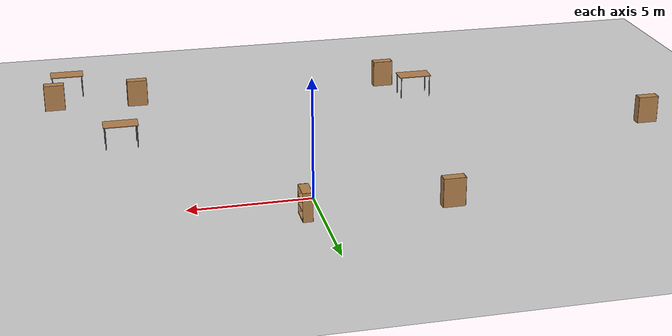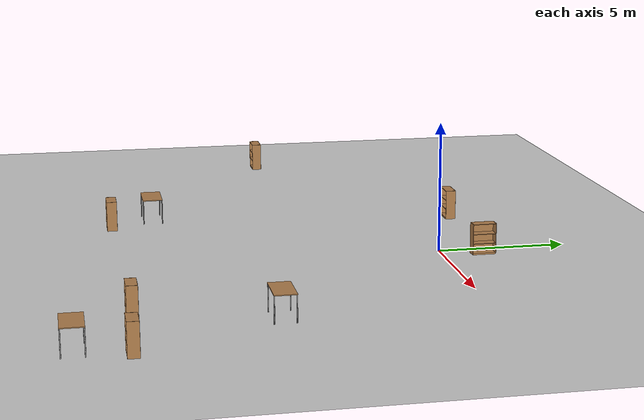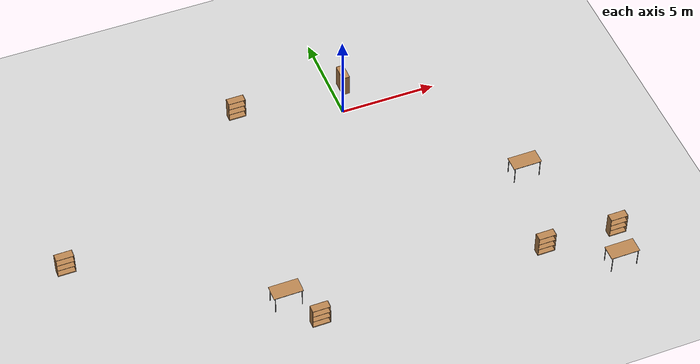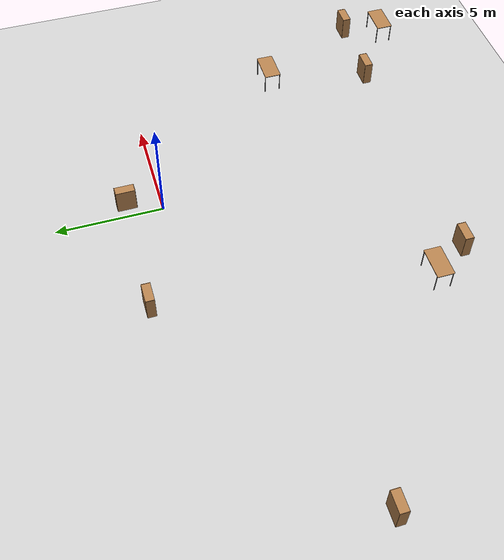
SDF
<sdf version="1.7">
 <world name="default">
  <model name="ground_plane">
   <static>1</static>
   <link name="link">
    <collision name="collision">
     <geometry><plane><normal>0 0 1</normal><size>1000 1000</size></plane></geometry>
     <surface>
      <contact><collide_bitmask>65535</collide_bitmask></contact>
      <friction><ode><mu>100</mu><mu2>50</mu2></ode></friction>
     </surface>
    </collision>
    <visual name="visual">
     <cast_shadows>0</cast_shadows>
     <geometry><plane><normal>0 0 1</normal><size>100 100</size></plane></geometry>
     <material>
      <script><uri>file://media/materials/scripts/gazebo.material</uri><name>Gazebo/Grey</name></script>
     </material>
    </visual>
   </link>
  </model>
  <model name="bookshelf">
   <static>1</static>
   <link name="link">
    <inertial><mass>1</mass></inertial>
    <visual name="visual1">
     <pose>0 0.005 0.6 0 -0 0</pose>
     <geometry><box><size>0.9 0.01 1.2</size></box></geometry>
     <material>
      <script><uri>file://media/materials/scripts/gazebo.material</uri><name>Gazebo/Wood</name></script>
     </material>
    </visual>
    <visual name="visual2">
     <pose>0.45 -0.195 0.6 0 -0 0</pose>
     <geometry><box><size>0.02 0.4 1.2</size></box></geometry>
     <material>
      <script><uri>file://media/materials/scripts/gazebo.material</uri><name>Gazebo/Wood</name></script>
     </material>
    </visual>
    <visual name="visual3">
     <pose>-0.45 -0.195 0.6 0 -0 0</pose>
     <geometry><box><size>0.02 0.4 1.2</size></box></geometry>
     <material>
      <script><uri>file://media/materials/scripts/gazebo.material</uri><name>Gazebo/Wood</name></script>
     </material>
    </visual>
    <visual name="visual4">
     <pose>0 -0.195 0.03 0 -0 0</pose>
     <geometry><box><size>0.88 0.4 0.06</size></box></geometry>
     <material>
      <script><uri>file://media/materials/scripts/gazebo.material</uri><name>Gazebo/Wood</name></script>
     </material>
    </visual>
    <visual name="visual5">
     <pose>0 -0.195 1.19 0 -0 0</pose>
     <geometry><box><size>0.88 0.4 0.02</size></box></geometry>
     <material>
      <script><uri>file://media/materials/scripts/gazebo.material</uri><name>Gazebo/Wood</name></script>
     </material>
    </visual>
    <visual name="visual6">
     <pose>0 -0.195 0.43 0 -0 0</pose>
     <geometry><box><size>0.88 0.4 0.02</size></box></geometry>
     <material>
      <script><uri>file://media/materials/scripts/gazebo.material</uri><name>Gazebo/Wood</name></script>
     </material>
    </visual>
    <visual name="visual7">
     <pose>0 -0.195 0.8 0 -0 0</pose>
     <geometry><box><size>0.88 0.4 0.02</size></box></geometry>
     <material>
      <script><uri>file://media/materials/scripts/gazebo.material</uri><name>Gazebo/Wood</name></script>
     </material>
    </visual>
   </link>
   <pose>0.43 1.58 0 0 -0 1.57611</pose>
  </model>
  <model name="bookshelf_0">
   <static>1</static>
   <link name="link">
    <inertial><mass>1</mass></inertial>
    <collision name="back">
     <pose>0 0.005 0.6 0 -0 0</pose>
     <geometry><box><size>0.9 0.01 1.2</size></box></geometry>
    </collision>
    <visual name="visual1">
     <pose>0 0.005 0.6 0 -0 0</pose>
     <geometry><box><size>0.9 0.01 1.2</size></box></geometry>
     <material>
      <script><uri>file://media/materials/scripts/gazebo.material</uri><name>Gazebo/Wood</name></script>
     </material>
    </visual>
    <collision name="left_side">
     <pose>0.45 -0.195 0.6 0 -0 0</pose>
     <geometry><box><size>0.02 0.4 1.2</size></box></geometry>
    </collision>
    <visual name="visual2">
     <pose>0.45 -0.195 0.6 0 -0 0</pose>
     <geometry><box><size>0.02 0.4 1.2</size></box></geometry>
     <material>
      <script><uri>file://media/materials/scripts/gazebo.material</uri><name>Gazebo/Wood</name></script>
     </material>
    </visual>
    <collision name="right_side">
     <pose>-0.45 -0.195 0.6 0 -0 0</pose>
     <geometry><box><size>0.02 0.4 1.2</size></box></geometry>
    </collision>
    <visual name="visual3">
     <pose>-0.45 -0.195 0.6 0 -0 0</pose>
     <geometry><box><size>0.02 0.4 1.2</size></box></geometry>
     <material>
      <script><uri>file://media/materials/scripts/gazebo.material</uri><name>Gazebo/Wood</name></script>
     </material>
    </visual>
    <collision name="bottom">
     <pose>0 -0.195 0.03 0 -0 0</pose>
     <geometry><box><size>0.88 0.4 0.06</size></box></geometry>
    </collision>
    <visual name="visual4">
     <pose>0 -0.195 0.03 0 -0 0</pose>
     <geometry><box><size>0.88 0.4 0.06</size></box></geometry>
     <material>
      <script><uri>file://media/materials/scripts/gazebo.material</uri><name>Gazebo/Wood</name></script>
     </material>
    </visual>
    <collision name="top">
     <pose>0 -0.195 1.19 0 -0 0</pose>
     <geometry><box><size>0.88 0.4 0.02</size></box></geometry>
    </collision>
    <visual name="visual5">
     <pose>0 -0.195 1.19 0 -0 0</pose>
     <geometry><box><size>0.88 0.4 0.02</size></box></geometry>
     <material>
      <script><uri>file://media/materials/scripts/gazebo.material</uri><name>Gazebo/Wood</name></script>
     </material>
    </visual>
    <collision name="low_shelf">
     <pose>0 -0.195 0.43 0 -0 0</pose>
     <geometry><box><size>0.88 0.4 0.02</size></box></geometry>
    </collision>
    <visual name="visual6">
     <pose>0 -0.195 0.43 0 -0 0</pose>
     <geometry><box><size>0.88 0.4 0.02</size></box></geometry>
     <material>
      <script><uri>file://media/materials/scripts/gazebo.material</uri><name>Gazebo/Wood</name></script>
     </material>
    </visual>
    <collision name="high_shelf">
     <pose>0 -0.195 0.8 0 -0 0</pose>
     <geometry><box><size>0.88 0.4 0.02</size></box></geometry>
    </collision>
    <visual name="visual7">
     <pose>0 -0.195 0.8 0 -0 0</pose>
     <geometry><box><size>0.88 0.4 0.02</size></box></geometry>
     <material>
      <script><uri>file://media/materials/scripts/gazebo.material</uri><name>Gazebo/Wood</name></script>
     </material>
    </visual>
   </link>
   <pose>-5.16677 1.95844 0 0 -0 0</pose>
  </model>
  <model name="table_0">
   <static>1</static>
   <link name="link">
    <collision name="surface">
     <pose>0 0 1 0 -0 0</pose>
     <geometry><box><size>1.5 0.8 0.03</size></box></geometry>
     <surface><friction><ode><mu>0.6</mu><mu2>0.6</mu2></ode></friction></surface>
    </collision>
    <visual name="visual1">
     <pose>0 0 1 0 -0 0</pose>
     <geometry><box><size>1.5 0.8 0.03</size></box></geometry>
     <material>
      <script><uri>file://media/materials/scripts/gazebo.material</uri><name>Gazebo/Wood</name></script>
     </material>
    </visual>
    <collision name="front_left_leg">
     <pose>0.68 0.38 0.5 0 -0 0</pose>
     <geometry><cylinder><radius>0.02</radius><length>1</length></cylinder></geometry>
    </collision>
    <visual name="front_left_leg">
     <pose>0.68 0.38 0.5 0 -0 0</pose>
     <geometry><cylinder><radius>0.02</radius><length>1</length></cylinder></geometry>
     <material>
      <script><uri>file://media/materials/scripts/gazebo.material</uri><name>Gazebo/Grey</name></script>
     </material>
    </visual>
    <collision name="front_right_leg">
     <pose>0.68 -0.38 0.5 0 -0 0</pose>
     <geometry><cylinder><radius>0.02</radius><length>1</length></cylinder></geometry>
    </collision>
    <visual name="front_right_leg">
     <pose>0.68 -0.38 0.5 0 -0 0</pose>
     <geometry><cylinder><radius>0.02</radius><length>1</length></cylinder></geometry>
     <material>
      <script><uri>file://media/materials/scripts/gazebo.material</uri><name>Gazebo/Grey</name></script>
     </material>
    </visual>
    <collision name="back_right_leg">
     <pose>-0.68 -0.38 0.5 0 -0 0</pose>
     <geometry><cylinder><radius>0.02</radius><length>1</length></cylinder></geometry>
    </collision>
    <visual name="back_right_leg">
     <pose>-0.68 -0.38 0.5 0 -0 0</pose>
     <geometry><cylinder><radius>0.02</radius><length>1</length></cylinder></geometry>
     <material>
      <script><uri>file://media/materials/scripts/gazebo.material</uri><name>Gazebo/Grey</name></script>
     </material>
    </visual>
    <collision name="back_left_leg">
     <pose>-0.68 0.38 0.5 0 -0 0</pose>
     <geometry><cylinder><radius>0.02</radius><length>1</length></cylinder></geometry>
    </collision>
    <visual name="back_left_leg">
     <pose>-0.68 0.38 0.5 0 -0 0</pose>
     <geometry><cylinder><radius>0.02</radius><length>1</length></cylinder></geometry>
     <material>
      <script><uri>file://media/materials/scripts/gazebo.material</uri><name>Gazebo/Grey</name></script>
     </material>
    </visual>
   </link>
   <pose>6.91808 -7.19797 0 0 -0 0</pose>
  </model>
  <model name="bookshelf_3">
   <static>1</static>
   <link name="link">
    <inertial><mass>1</mass></inertial>
    <collision name="back">
     <pose>0 0.005 0.6 0 -0 0</pose>
     <geometry><box><size>0.9 0.01 1.2</size></box></geometry>
    </collision>
    <visual name="visual1">
     <pose>0 0.005 0.6 0 -0 0</pose>
     <geometry><box><size>0.9 0.01 1.2</size></box></geometry>
     <material>
      <script><uri>file://media/materials/scripts/gazebo.material</uri><name>Gazebo/Wood</name></script>
     </material>
    </visual>
    <collision name="left_side">
     <pose>0.45 -0.195 0.6 0 -0 0</pose>
     <geometry><box><size>0.02 0.4 1.2</size></box></geometry>
    </collision>
    <visual name="visual2">
     <pose>0.45 -0.195 0.6 0 -0 0</pose>
     <geometry><box><size>0.02 0.4 1.2</size></box></geometry>
     <material>
      <script><uri>file://media/materials/scripts/gazebo.material</uri><name>Gazebo/Wood</name></script>
     </material>
    </visual>
    <collision name="right_side">
     <pose>-0.45 -0.195 0.6 0 -0 0</pose>
     <geometry><box><size>0.02 0.4 1.2</size></box></geometry>
    </collision>
    <visual name="visual3">
     <pose>-0.45 -0.195 0.6 0 -0 0</pose>
     <geometry><box><size>0.02 0.4 1.2</size></box></geometry>
     <material>
      <script><uri>file://media/materials/scripts/gazebo.material</uri><name>Gazebo/Wood</name></script>
     </material>
    </visual>
    <collision name="bottom">
     <pose>0 -0.195 0.03 0 -0 0</pose>
     <geometry><box><size>0.88 0.4 0.06</size></box></geometry>
    </collision>
    <visual name="visual4">
     <pose>0 -0.195 0.03 0 -0 0</pose>
     <geometry><box><size>0.88 0.4 0.06</size></box></geometry>
     <material>
      <script><uri>file://media/materials/scripts/gazebo.material</uri><name>Gazebo/Wood</name></script>
     </material>
    </visual>
    <collision name="top">
     <pose>0 -0.195 1.19 0 -0 0</pose>
     <geometry><box><size>0.88 0.4 0.02</size></box></geometry>
    </collision>
    <visual name="visual5">
     <pose>0 -0.195 1.19 0 -0 0</pose>
     <geometry><box><size>0.88 0.4 0.02</size></box></geometry>
     <material>
      <script><uri>file://media/materials/scripts/gazebo.material</uri><name>Gazebo/Wood</name></script>
     </material>
    </visual>
    <collision name="low_shelf">
     <pose>0 -0.195 0.43 0 -0 0</pose>
     <geometry><box><size>0.88 0.4 0.02</size></box></geometry>
    </collision>
    <visual name="visual6">
     <pose>0 -0.195 0.43 0 -0 0</pose>
     <geometry><box><size>0.88 0.4 0.02</size></box></geometry>
     <material>
      <script><uri>file://media/materials/scripts/gazebo.material</uri><name>Gazebo/Wood</name></script>
     </material>
    </visual>
    <collision name="high_shelf">
     <pose>0 -0.195 0.8 0 -0 0</pose>
     <geometry><box><size>0.88 0.4 0.02</size></box></geometry>
    </collision>
    <visual name="visual7">
     <pose>0 -0.195 0.8 0 -0 0</pose>
     <geometry><box><size>0.88 0.4 0.02</size></box></geometry>
     <material>
      <script><uri>file://media/materials/scripts/gazebo.material</uri><name>Gazebo/Wood</name></script>
     </material>
    </visual>
   </link>
   <pose>5.82048 -11.903 0 0 -0 0</pose>
  </model>
  <model name="bookshelf_16">
   <static>1</static>
   <link name="link">
    <inertial><mass>1</mass></inertial>
    <collision name="back">
     <pose>0 0.005 0.6 0 -0 0</pose>
     <geometry><box><size>0.9 0.01 1.2</size></box></geometry>
    </collision>
    <visual name="visual1">
     <pose>0 0.005 0.6 0 -0 0</pose>
     <geometry><box><size>0.9 0.01 1.2</size></box></geometry>
     <material>
      <script><uri>file://media/materials/scripts/gazebo.material</uri><name>Gazebo/Wood</name></script>
     </material>
    </visual>
    <collision name="left_side">
     <pose>0.45 -0.195 0.6 0 -0 0</pose>
     <geometry><box><size>0.02 0.4 1.2</size></box></geometry>
    </collision>
    <visual name="visual2">
     <pose>0.45 -0.195 0.6 0 -0 0</pose>
     <geometry><box><size>0.02 0.4 1.2</size></box></geometry>
     <material>
      <script><uri>file://media/materials/scripts/gazebo.material</uri><name>Gazebo/Wood</name></script>
     </material>
    </visual>
    <collision name="right_side">
     <pose>-0.45 -0.195 0.6 0 -0 0</pose>
     <geometry><box><size>0.02 0.4 1.2</size></box></geometry>
    </collision>
    <visual name="visual3">
     <pose>-0.45 -0.195 0.6 0 -0 0</pose>
     <geometry><box><size>0.02 0.4 1.2</size></box></geometry>
     <material>
      <script><uri>file://media/materials/scripts/gazebo.material</uri><name>Gazebo/Wood</name></script>
     </material>
    </visual>
    <collision name="bottom">
     <pose>0 -0.195 0.03 0 -0 0</pose>
     <geometry><box><size>0.88 0.4 0.06</size></box></geometry>
    </collision>
    <visual name="visual4">
     <pose>0 -0.195 0.03 0 -0 0</pose>
     <geometry><box><size>0.88 0.4 0.06</size></box></geometry>
     <material>
      <script><uri>file://media/materials/scripts/gazebo.material</uri><name>Gazebo/Wood</name></script>
     </material>
    </visual>
    <collision name="top">
     <pose>0 -0.195 1.19 0 -0 0</pose>
     <geometry><box><size>0.88 0.4 0.02</size></box></geometry>
    </collision>
    <visual name="visual5">
     <pose>0 -0.195 1.19 0 -0 0</pose>
     <geometry><box><size>0.88 0.4 0.02</size></box></geometry>
     <material>
      <script><uri>file://media/materials/scripts/gazebo.material</uri><name>Gazebo/Wood</name></script>
     </material>
    </visual>
    <collision name="low_shelf">
     <pose>0 -0.195 0.43 0 -0 0</pose>
     <geometry><box><size>0.88 0.4 0.02</size></box></geometry>
    </collision>
    <visual name="visual6">
     <pose>0 -0.195 0.43 0 -0 0</pose>
     <geometry><box><size>0.88 0.4 0.02</size></box></geometry>
     <material>
      <script><uri>file://media/materials/scripts/gazebo.material</uri><name>Gazebo/Wood</name></script>
     </material>
    </visual>
    <collision name="high_shelf">
     <pose>0 -0.195 0.8 0 -0 0</pose>
     <geometry><box><size>0.88 0.4 0.02</size></box></geometry>
    </collision>
    <visual name="visual7">
     <pose>0 -0.195 0.8 0 -0 0</pose>
     <geometry><box><size>0.88 0.4 0.02</size></box></geometry>
     <material>
      <script><uri>file://media/materials/scripts/gazebo.material</uri><name>Gazebo/Wood</name></script>
     </material>
    </visual>
   </link>
   <pose>-16.2598 -4.62783 0 0 -0 0</pose>
  </model>
  <model name="table_6">
   <static>1</static>
   <link name="link">
    <collision name="surface">
     <pose>0 0 1 0 -0 0</pose>
     <geometry><box><size>1.5 0.8 0.03</size></box></geometry>
     <surface><friction><ode><mu>0.6</mu><mu2>0.6</mu2></ode></friction></surface>
    </collision>
    <visual name="visual1">
     <pose>0 0 1 0 -0 0</pose>
     <geometry><box><size>1.5 0.8 0.03</size></box></geometry>
     <material>
      <script><uri>file://media/materials/scripts/gazebo.material</uri><name>Gazebo/Wood</name></script>
     </material>
    </visual>
    <collision name="front_left_leg">
     <pose>0.68 0.38 0.5 0 -0 0</pose>
     <geometry><cylinder><radius>0.02</radius><length>1</length></cylinder></geometry>
    </collision>
    <visual name="front_left_leg">
     <pose>0.68 0.38 0.5 0 -0 0</pose>
     <geometry><cylinder><radius>0.02</radius><length>1</length></cylinder></geometry>
     <material>
      <script><uri>file://media/materials/scripts/gazebo.material</uri><name>Gazebo/Grey</name></script>
     </material>
    </visual>
    <collision name="front_right_leg">
     <pose>0.68 -0.38 0.5 0 -0 0</pose>
     <geometry><cylinder><radius>0.02</radius><length>1</length></cylinder></geometry>
    </collision>
    <visual name="front_right_leg">
     <pose>0.68 -0.38 0.5 0 -0 0</pose>
     <geometry><cylinder><radius>0.02</radius><length>1</length></cylinder></geometry>
     <material>
      <script><uri>file://media/materials/scripts/gazebo.material</uri><name>Gazebo/Grey</name></script>
     </material>
    </visual>
    <collision name="back_right_leg">
     <pose>-0.68 -0.38 0.5 0 -0 0</pose>
     <geometry><cylinder><radius>0.02</radius><length>1</length></cylinder></geometry>
    </collision>
    <visual name="back_right_leg">
     <pose>-0.68 -0.38 0.5 0 -0 0</pose>
     <geometry><cylinder><radius>0.02</radius><length>1</length></cylinder></geometry>
     <material>
      <script><uri>file://media/materials/scripts/gazebo.material</uri><name>Gazebo/Grey</name></script>
     </material>
    </visual>
    <collision name="back_left_leg">
     <pose>-0.68 0.38 0.5 0 -0 0</pose>
     <geometry><cylinder><radius>0.02</radius><length>1</length></cylinder></geometry>
    </collision>
    <visual name="back_left_leg">
     <pose>-0.68 0.38 0.5 0 -0 0</pose>
     <geometry><cylinder><radius>0.02</radius><length>1</length></cylinder></geometry>
     <material>
      <script><uri>file://media/materials/scripts/gazebo.material</uri><name>Gazebo/Grey</name></script>
     </material>
    </visual>
   </link>
   <pose>-7.0092 -10.4852 0 0 -0 0</pose>
  </model>
  <model name="bookshelf_17">
   <static>1</static>
   <link name="link">
    <inertial><mass>1</mass></inertial>
    <collision name="back">
     <pose>0 0.005 0.6 0 -0 0</pose>
     <geometry><box><size>0.9 0.01 1.2</size></box></geometry>
    </collision>
    <visual name="visual1">
     <pose>0 0.005 0.6 0 -0 0</pose>
     <geometry><box><size>0.9 0.01 1.2</size></box></geometry>
     <material>
      <script><uri>file://media/materials/scripts/gazebo.material</uri><name>Gazebo/Wood</name></script>
     </material>
    </visual>
    <collision name="left_side">
     <pose>0.45 -0.195 0.6 0 -0 0</pose>
     <geometry><box><size>0.02 0.4 1.2</size></box></geometry>
    </collision>
    <visual name="visual2">
     <pose>0.45 -0.195 0.6 0 -0 0</pose>
     <geometry><box><size>0.02 0.4 1.2</size></box></geometry>
     <material>
      <script><uri>file://media/materials/scripts/gazebo.material</uri><name>Gazebo/Wood</name></script>
     </material>
    </visual>
    <collision name="right_side">
     <pose>-0.45 -0.195 0.6 0 -0 0</pose>
     <geometry><box><size>0.02 0.4 1.2</size></box></geometry>
    </collision>
    <visual name="visual3">
     <pose>-0.45 -0.195 0.6 0 -0 0</pose>
     <geometry><box><size>0.02 0.4 1.2</size></box></geometry>
     <material>
      <script><uri>file://media/materials/scripts/gazebo.material</uri><name>Gazebo/Wood</name></script>
     </material>
    </visual>
    <collision name="bottom">
     <pose>0 -0.195 0.03 0 -0 0</pose>
     <geometry><box><size>0.88 0.4 0.06</size></box></geometry>
    </collision>
    <visual name="visual4">
     <pose>0 -0.195 0.03 0 -0 0</pose>
     <geometry><box><size>0.88 0.4 0.06</size></box></geometry>
     <material>
      <script><uri>file://media/materials/scripts/gazebo.material</uri><name>Gazebo/Wood</name></script>
     </material>
    </visual>
    <collision name="top">
     <pose>0 -0.195 1.19 0 -0 0</pose>
     <geometry><box><size>0.88 0.4 0.02</size></box></geometry>
    </collision>
    <visual name="visual5">
     <pose>0 -0.195 1.19 0 -0 0</pose>
     <geometry><box><size>0.88 0.4 0.02</size></box></geometry>
     <material>
      <script><uri>file://media/materials/scripts/gazebo.material</uri><name>Gazebo/Wood</name></script>
     </material>
    </visual>
    <collision name="low_shelf">
     <pose>0 -0.195 0.43 0 -0 0</pose>
     <geometry><box><size>0.88 0.4 0.02</size></box></geometry>
    </collision>
    <visual name="visual6">
     <pose>0 -0.195 0.43 0 -0 0</pose>
     <geometry><box><size>0.88 0.4 0.02</size></box></geometry>
     <material>
      <script><uri>file://media/materials/scripts/gazebo.material</uri><name>Gazebo/Wood</name></script>
     </material>
    </visual>
    <collision name="high_shelf">
     <pose>0 -0.195 0.8 0 -0 0</pose>
     <geometry><box><size>0.88 0.4 0.02</size></box></geometry>
    </collision>
    <visual name="visual7">
     <pose>0 -0.195 0.8 0 -0 0</pose>
     <geometry><box><size>0.88 0.4 0.02</size></box></geometry>
     <material>
      <script><uri>file://media/materials/scripts/gazebo.material</uri><name>Gazebo/Wood</name></script>
     </material>
    </visual>
   </link>
   <pose>-5.92053 -11.9964 0 0 -0 0</pose>
  </model>
  <model name="bookshelf_18">
   <static>1</static>
   <link name="link">
    <inertial><mass>1</mass></inertial>
    <collision name="back">
     <pose>0 0.005 0.6 0 -0 0</pose>
     <geometry><box><size>0.9 0.01 1.2</size></box></geometry>
    </collision>
    <visual name="visual1">
     <pose>0 0.005 0.6 0 -0 0</pose>
     <geometry><box><size>0.9 0.01 1.2</size></box></geometry>
     <material>
      <script><uri>file://media/materials/scripts/gazebo.material</uri><name>Gazebo/Wood</name></script>
     </material>
    </visual>
    <collision name="left_side">
     <pose>0.45 -0.195 0.6 0 -0 0</pose>
     <geometry><box><size>0.02 0.4 1.2</size></box></geometry>
    </collision>
    <visual name="visual2">
     <pose>0.45 -0.195 0.6 0 -0 0</pose>
     <geometry><box><size>0.02 0.4 1.2</size></box></geometry>
     <material>
      <script><uri>file://media/materials/scripts/gazebo.material</uri><name>Gazebo/Wood</name></script>
     </material>
    </visual>
    <collision name="right_side">
     <pose>-0.45 -0.195 0.6 0 -0 0</pose>
     <geometry><box><size>0.02 0.4 1.2</size></box></geometry>
    </collision>
    <visual name="visual3">
     <pose>-0.45 -0.195 0.6 0 -0 0</pose>
     <geometry><box><size>0.02 0.4 1.2</size></box></geometry>
     <material>
      <script><uri>file://media/materials/scripts/gazebo.material</uri><name>Gazebo/Wood</name></script>
     </material>
    </visual>
    <collision name="bottom">
     <pose>0 -0.195 0.03 0 -0 0</pose>
     <geometry><box><size>0.88 0.4 0.06</size></box></geometry>
    </collision>
    <visual name="visual4">
     <pose>0 -0.195 0.03 0 -0 0</pose>
     <geometry><box><size>0.88 0.4 0.06</size></box></geometry>
     <material>
      <script><uri>file://media/materials/scripts/gazebo.material</uri><name>Gazebo/Wood</name></script>
     </material>
    </visual>
    <collision name="top">
     <pose>0 -0.195 1.19 0 -0 0</pose>
     <geometry><box><size>0.88 0.4 0.02</size></box></geometry>
    </collision>
    <visual name="visual5">
     <pose>0 -0.195 1.19 0 -0 0</pose>
     <geometry><box><size>0.88 0.4 0.02</size></box></geometry>
     <material>
      <script><uri>file://media/materials/scripts/gazebo.material</uri><name>Gazebo/Wood</name></script>
     </material>
    </visual>
    <collision name="low_shelf">
     <pose>0 -0.195 0.43 0 -0 0</pose>
     <geometry><box><size>0.88 0.4 0.02</size></box></geometry>
    </collision>
    <visual name="visual6">
     <pose>0 -0.195 0.43 0 -0 0</pose>
     <geometry><box><size>0.88 0.4 0.02</size></box></geometry>
     <material>
      <script><uri>file://media/materials/scripts/gazebo.material</uri><name>Gazebo/Wood</name></script>
     </material>
    </visual>
    <collision name="high_shelf">
     <pose>0 -0.195 0.8 0 -0 0</pose>
     <geometry><box><size>0.88 0.4 0.02</size></box></geometry>
    </collision>
    <visual name="visual7">
     <pose>0 -0.195 0.8 0 -0 0</pose>
     <geometry><box><size>0.88 0.4 0.02</size></box></geometry>
     <material>
      <script><uri>file://media/materials/scripts/gazebo.material</uri><name>Gazebo/Wood</name></script>
     </material>
    </visual>
   </link>
   <pose>9.57551 -12.0969 0 0 -0 0</pose>
  </model>
  <model name="table_9">
   <static>1</static>
   <link name="link">
    <collision name="surface">
     <pose>0 0 1 0 -0 0</pose>
     <geometry><box><size>1.5 0.8 0.03</size></box></geometry>
     <surface><friction><ode><mu>0.6</mu><mu2>0.6</mu2></ode></friction></surface>
    </collision>
    <visual name="visual1">
     <pose>0 0 1 0 -0 0</pose>
     <geometry><box><size>1.5 0.8 0.03</size></box></geometry>
     <material>
      <script><uri>file://media/materials/scripts/gazebo.material</uri><name>Gazebo/Wood</name></script>
     </material>
    </visual>
    <collision name="front_left_leg">
     <pose>0.68 0.38 0.5 0 -0 0</pose>
     <geometry><cylinder><radius>0.02</radius><length>1</length></cylinder></geometry>
    </collision>
    <visual name="front_left_leg">
     <pose>0.68 0.38 0.5 0 -0 0</pose>
     <geometry><cylinder><radius>0.02</radius><length>1</length></cylinder></geometry>
     <material>
      <script><uri>file://media/materials/scripts/gazebo.material</uri><name>Gazebo/Grey</name></script>
     </material>
    </visual>
    <collision name="front_right_leg">
     <pose>0.68 -0.38 0.5 0 -0 0</pose>
     <geometry><cylinder><radius>0.02</radius><length>1</length></cylinder></geometry>
    </collision>
    <visual name="front_right_leg">
     <pose>0.68 -0.38 0.5 0 -0 0</pose>
     <geometry><cylinder><radius>0.02</radius><length>1</length></cylinder></geometry>
     <material>
      <script><uri>file://media/materials/scripts/gazebo.material</uri><name>Gazebo/Grey</name></script>
     </material>
    </visual>
    <collision name="back_right_leg">
     <pose>-0.68 -0.38 0.5 0 -0 0</pose>
     <geometry><cylinder><radius>0.02</radius><length>1</length></cylinder></geometry>
    </collision>
    <visual name="back_right_leg">
     <pose>-0.68 -0.38 0.5 0 -0 0</pose>
     <geometry><cylinder><radius>0.02</radius><length>1</length></cylinder></geometry>
     <material>
      <script><uri>file://media/materials/scripts/gazebo.material</uri><name>Gazebo/Grey</name></script>
     </material>
    </visual>
    <collision name="back_left_leg">
     <pose>-0.68 0.38 0.5 0 -0 0</pose>
     <geometry><cylinder><radius>0.02</radius><length>1</length></cylinder></geometry>
    </collision>
    <visual name="back_left_leg">
     <pose>-0.68 0.38 0.5 0 -0 0</pose>
     <geometry><cylinder><radius>0.02</radius><length>1</length></cylinder></geometry>
     <material>
      <script><uri>file://media/materials/scripts/gazebo.material</uri><name>Gazebo/Grey</name></script>
     </material>
    </visual>
   </link>
   <pose>8.92911 -14.1169 0 0 -0 0</pose>
  </model>
 </world>
</sdf>
